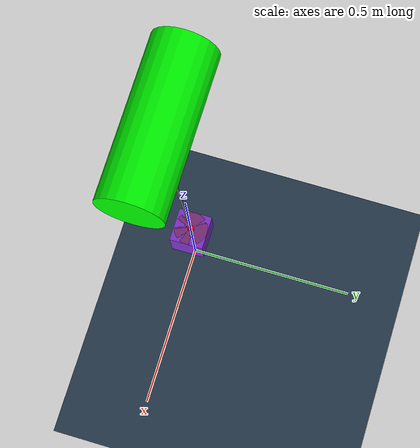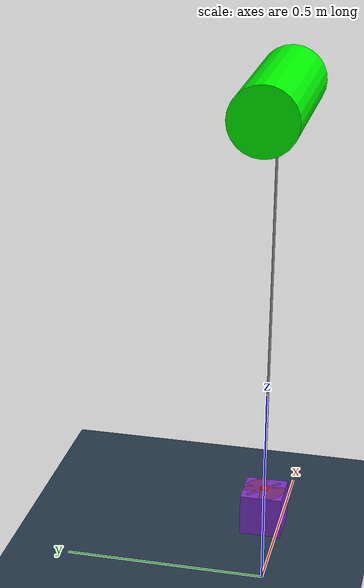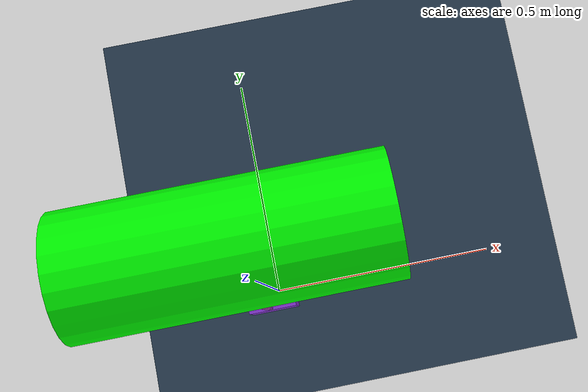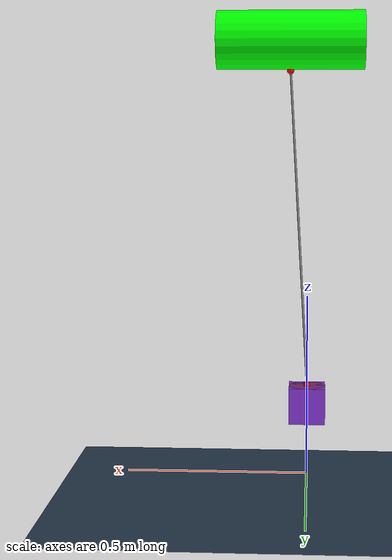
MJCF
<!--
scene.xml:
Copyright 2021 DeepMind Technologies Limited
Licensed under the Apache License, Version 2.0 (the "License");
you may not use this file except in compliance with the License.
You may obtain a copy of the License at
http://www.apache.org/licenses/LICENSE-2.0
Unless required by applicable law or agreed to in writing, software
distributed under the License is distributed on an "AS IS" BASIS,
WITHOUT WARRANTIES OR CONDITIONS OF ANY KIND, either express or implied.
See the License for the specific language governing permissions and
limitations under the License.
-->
<mujoco model="Rope">
    <include file="scene.xml"/>

  <option timestep="0.001" jacobian="dense"/>
  <size nconmax="500" njmax="1500" nkey="1"/>
  <default>
    <geom solref="1e-2 5" solimp=".5 .99 1e-3" friction=".5"/>
  </default>

  <worldbody>
    <light pos=".5 0 2"/>
    <body name="payload" pos="0 0 0.2">
        <geom type="box" size=".05 .05 .05" rgba=".5 .2 .8 1" mass="0"/>
        <freejoint/>
         <geom type="cylinder" size=".05 .05" density="100"  rgba=".5 .2 .2 .5"/>
        <site name="cable_end" pos="0 0 0.05" size="0.01" rgba="1 0 0 1"/>
    </body>
    <body name="beam" pos="0 0 1.2" quat="0 1 0 1">

        <body name="slider" pos="0 0 .05">
        <geom name="crane" type="cylinder" size=".08 .2 .08" rgba="0 1 0 1" mass="10"/>
        <site name="cable_begin" pos="-0.082 0 0" size="0.01" rgba="1 0 0 1"/>
        <joint name="pin" type="hinge" axis="0 0 1" pos="0 0 0" damping="1"/>
        </body>
    </body>
  </worldbody>

    <tendon>
        <spatial name="tendon_cable" limited="true" springlength="0.5" range="0 0.5" solimplimit="0.001 0.001 0.001 0.5 1" solreflimit="-100 -0" damping="50">
            <site site="cable_begin"/>
            <geom geom="crane"/>
            <site site="cable_end"/>

        </spatial>
    </tendon>

  <actuator>
    <motor name="motor" joint="pin" gear="1" ctrllimited="true" ctrlrange="-10 10"/>
  </actuator>

</mujoco>

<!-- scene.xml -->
<mujoco>
  <compiler meshdir="assets" texturedir="assets"/>
  <statistic extent="1.5" meansize=".05"/>

  <option timestep="0.005" jacobian="sparse"/>

  <visual>
    <rgba haze="0.15 0.25 0.35 1"/>
    <quality shadowsize="4096"/>
    <map stiffness="700" shadowscale="0.5" fogstart="10" fogend="15" zfar="40" haze="0.3"/>
  </visual>

  <asset>
    <texture type="skybox" builtin="gradient" rgb1="0.3 0.5 0.7" rgb2="0 0 0" width="512" height="512"/>
    <texture name="texplane" type="2d" builtin="checker" rgb1=".2 .3 .4" rgb2=".1 0.15 0.2"
      width="512" height="512" mark="cross" markrgb=".8 .8 .8"/>
    <texture name="texcarpet" type="2d" file="carpet.png"/>
    <texture name="texsponge" type="2d" file="sponge.png"/>
    <texture name="texmarble" type="cube" file="marble.png"/>

    <material name="matplane" reflectance="0.3" texture="texplane" texrepeat="1 1" texuniform="true"/>
    <material name="matcarpet" texture="texcarpet"/>
    <material name="matsponge" texture="texsponge" specular="0.3"/>
    <material name="matmarble" texture="texmarble" rgba=".7 .7 .7 1"/>
  </asset>

  <worldbody>
    <light directional="true" diffuse=".4 .4 .4" specular="0.1 0.1 0.1" pos="0 0 5.0" dir="0 0 -1" castshadow="false"/>
    <light directional="true" diffuse=".6 .6 .6" specular="0.2 0.2 0.2" pos="0 0 4" dir="0 0 -1"/>

    <geom name="ground" type="plane" size="0 0 1" pos="0 0 0" quat="1 0 0 0" material="matplane" condim="1"/>

  </worldbody>
</mujoco>
